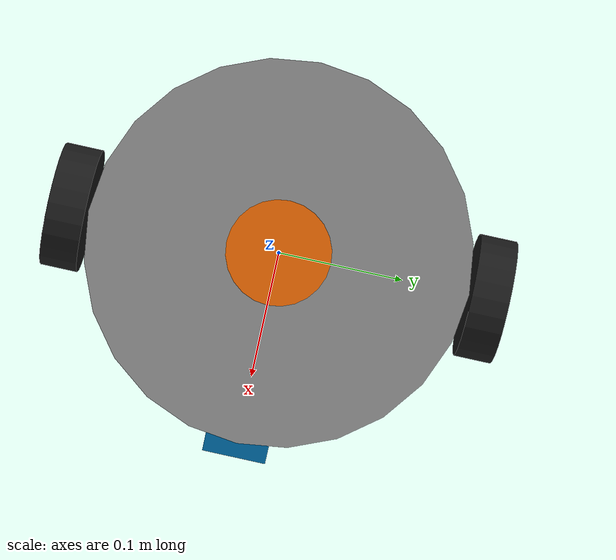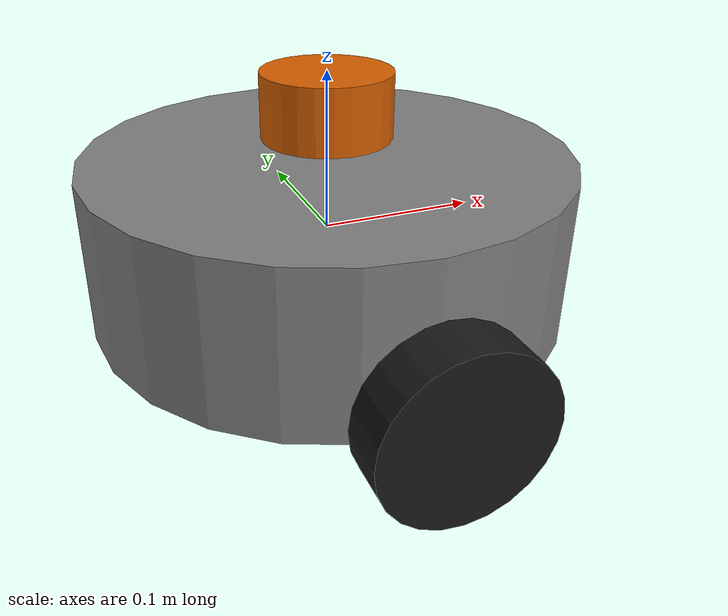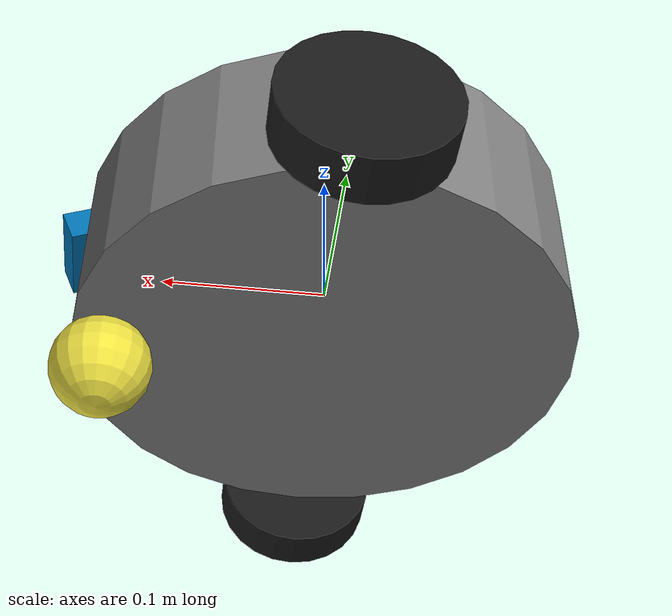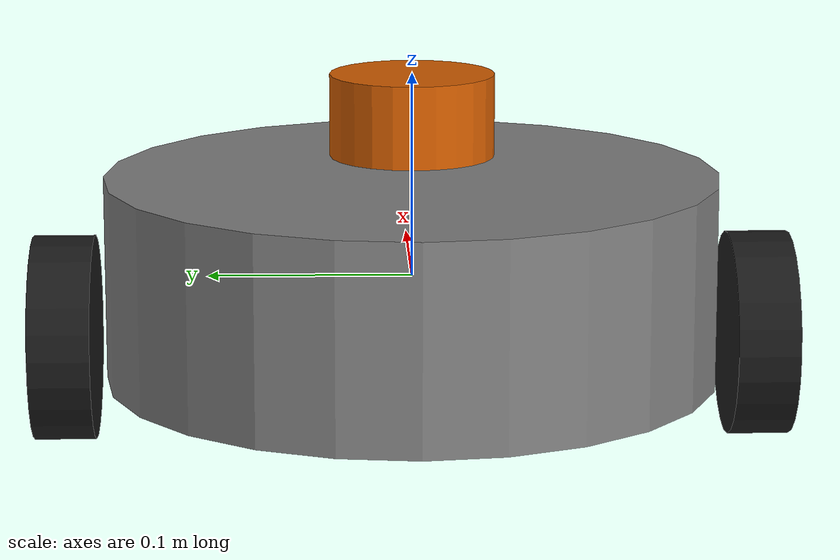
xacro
<?xml version="1.0"?>
<robot name="simple_bot" xmlns:xacro="http://www.ros.org/wiki/xacro">

  <!-- ===== 본체 (base_link) ===== -->
  <link name="base_link">
    <visual>
      <geometry><cylinder radius="0.15" length="0.1"/></geometry>
      <material name="grey"><color rgba="0.5 0.5 0.5 1"/></material>
    </visual>
    <collision>
      <geometry><cylinder radius="0.15" length="0.1"/></geometry>
    </collision>
    <inertial>
      <mass value="1.5"/>
      <inertia ixx="0.01" ixy="0" ixz="0" iyy="0.01" iyz="0" izz="0.01"/>
    </inertial>
  </link>

  <!-- ===== 바퀴 (좌/우) ===== -->
  <xacro:macro name="wheel" params="prefix y_pos">
    <link name="${prefix}_wheel">
      <visual>
        <geometry><cylinder radius="0.05" length="0.03"/></geometry>
        <origin rpy="1.5708 0 0"/>
        <material name="black"><color rgba="0.1 0.1 0.1 1"/></material>
      </visual>
      <collision>
        <geometry><cylinder radius="0.05" length="0.03"/></geometry>
        <origin rpy="1.5708 0 0"/>
      </collision>
      <inertial>
        <mass value="0.1"/>
        <inertia ixx="0.001" ixy="0" ixz="0" iyy="0.001" iyz="0" izz="0.001"/>
      </inertial>
    </link>
    <joint name="${prefix}_wheel_joint" type="continuous">
      <parent link="base_link"/>
      <child link="${prefix}_wheel"/>
      <origin xyz="0 ${y_pos} -0.03" rpy="0 0 0"/>
      <axis xyz="0 1 0"/>
    </joint>
  </xacro:macro>

  <xacro:wheel prefix="left" y_pos="0.17"/>
  <xacro:wheel prefix="right" y_pos="-0.17"/>

  <!-- ===== 캐스터 (앞쪽 지지용 볼) ===== -->
  <link name="caster_wheel">
    <visual><geometry><sphere radius="0.03"/></geometry></visual>
    <collision><geometry><sphere radius="0.03"/></geometry></collision>
    <inertial>
      <mass value="0.05"/>
      <inertia ixx="0.0001" ixy="0" ixz="0" iyy="0.0001" iyz="0" izz="0.0001"/>
    </inertial>
  </link>
  <joint name="caster_joint" type="fixed">
    <parent link="base_link"/>
    <child link="caster_wheel"/>
    <origin xyz="0.13 0 -0.07" rpy="0 0 0"/>
  </joint>

  <!-- ===== 카메라 ===== -->
  <link name="camera_link">
    <visual><geometry><box size="0.02 0.05 0.02"/></geometry></visual>
    <collision><geometry><box size="0.02 0.05 0.02"/></geometry></collision>
    <inertial>
      <mass value="0.01"/>
      <inertia ixx="0.00001" ixy="0" ixz="0" iyy="0.00001" iyz="0" izz="0.00001"/>
    </inertial>
  </link>
  <joint name="camera_joint" type="fixed">
    <parent link="base_link"/>
    <child link="camera_link"/>
    <!-- 라인트레이싱용이라 카메라를 앞쪽 아래로 살짝 기울여 바닥을 봄 -->
    <origin xyz="0.15 0 0.02" rpy="0 0.4 0"/>
  </joint>

  <!-- ===== 라이다 ===== -->
  <link name="lidar_link">
    <visual><geometry><cylinder radius="0.04" length="0.04"/></geometry></visual>
    <collision><geometry><cylinder radius="0.04" length="0.04"/></geometry></collision>
    <inertial>
      <mass value="0.05"/>
      <inertia ixx="0.0001" ixy="0" ixz="0" iyy="0.0001" iyz="0" izz="0.0001"/>
    </inertial>
  </link>
  <joint name="lidar_joint" type="fixed">
    <parent link="base_link"/>
    <child link="lidar_link"/>
    <origin xyz="0 0 0.08" rpy="0 0 0"/>
  </joint>

  <!-- ===== Gazebo 플러그인: 차동구동 ===== -->
  <gazebo>
    <plugin name="diff_drive" filename="libgazebo_ros_diff_drive.so">
      <left_joint>left_wheel_joint</left_joint>
      <right_joint>right_wheel_joint</right_joint>
      <wheel_separation>0.34</wheel_separation>
      <wheel_diameter>0.1</wheel_diameter>
      <max_wheel_torque>10</max_wheel_torque>
      <command_topic>cmd_vel</command_topic>
      <odometry_topic>odom</odometry_topic>
      <odometry_frame>odom</odometry_frame>
      <robot_base_frame>base_link</robot_base_frame>
      <publish_odom>true</publish_odom>
      <publish_odom_tf>true</publish_odom_tf>
    </plugin>
  </gazebo>

  <!-- ===== Gazebo 플러그인: 카메라 ===== -->
  <gazebo reference="camera_link">
    <sensor type="camera" name="camera_sensor">
      <update_rate>30</update_rate>
      <camera>
        <horizontal_fov>1.396</horizontal_fov>
        <image><width>640</width><height>480</height><format>R8G8B8</format></image>
        <clip><near>0.05</near><far>10</far></clip>
      </camera>
      <plugin name="camera_plugin" filename="libgazebo_ros_camera.so">
        <camera_name>camera</camera_name>
        <ros>
          <namespace>/</namespace>
          <remapping>image_raw:=camera/image_raw</remapping>
        </ros>
        <frame_name>camera_link</frame_name>
      </plugin>
    </sensor>
  </gazebo>

  <!-- ===== Gazebo 플러그인: 라이다 ===== -->
  <gazebo reference="lidar_link">
    <sensor type="ray" name="lidar_sensor">
      <update_rate>10</update_rate>
      <ray>
        <scan>
          <horizontal>
            <samples>360</samples>
            <min_angle>-3.14159</min_angle>
            <max_angle>3.14159</max_angle>
          </horizontal>
        </scan>
        <range><min>0.12</min><max>6.0</max></range>
      </ray>
      <plugin name="lidar_plugin" filename="libgazebo_ros_ray_sensor.so">
        <ros>
          <remapping>~/out:=scan</remapping>
        </ros>
        <output_type>sensor_msgs/LaserScan</output_type>
        <frame_name>lidar_link</frame_name>
      </plugin>
    </sensor>
  </gazebo>

</robot>
